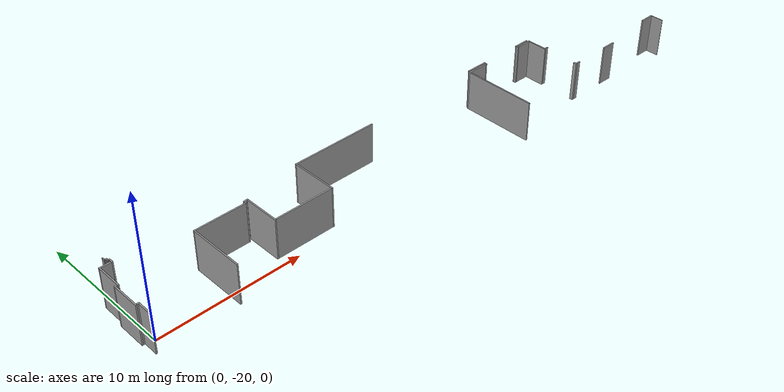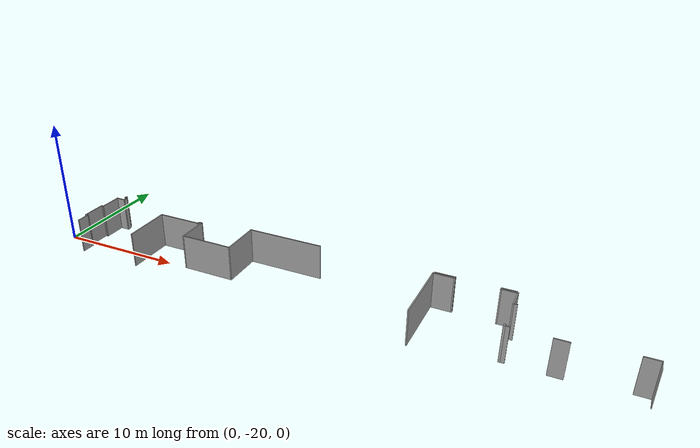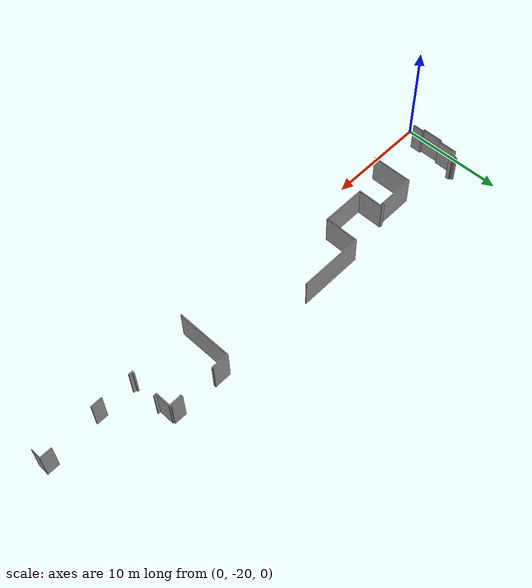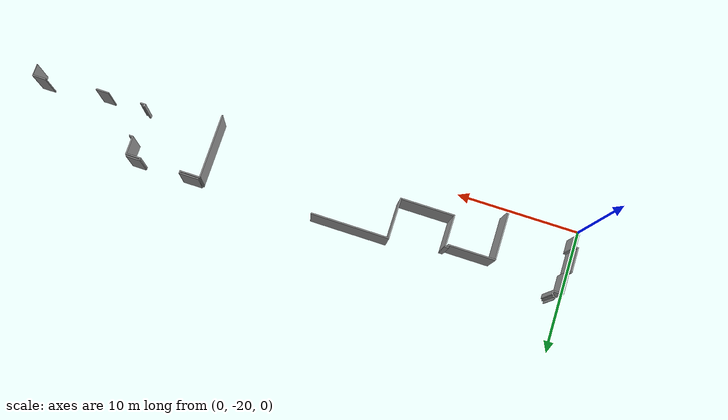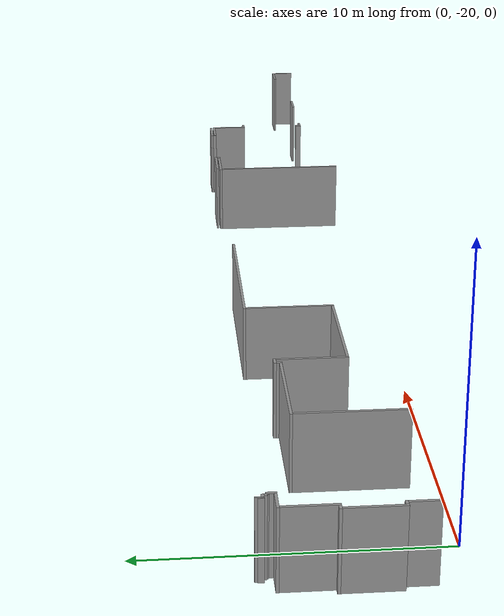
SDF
<sdf version="1.4">
 <model name="RussianRestaurant">
  <static>1</static>
  <link name="Wall_138">
   <collision name="Wall_138_Collision">
    <geometry><box><size>0.05000 0.30000 3.00000</size></box></geometry>
    <pose>0.82500 -14.05000 0 0 0 0.00000</pose>
   </collision>
   <visual name="Wall_138_Visual">
    <geometry><box><size>0.05000 0.30000 3.00000</size></box></geometry>
    <material>
     <script><uri>file://media/materials/scripts/gazebo.material</uri><name>Gazebo/Grey</name></script>
    </material>
    <pose>0.82500 -14.05000 0 0 0 0.00000</pose>
   </visual>
  </link>
  <link name="Wall_139">
   <collision name="Wall_139_Collision">
    <geometry><box><size>0.05000 0.20000 3.00000</size></box></geometry>
    <pose>0.77500 -14.10000 0 0 0 0.00000</pose>
   </collision>
   <visual name="Wall_139_Visual">
    <geometry><box><size>0.05000 0.20000 3.00000</size></box></geometry>
    <material>
     <script><uri>file://media/materials/scripts/gazebo.material</uri><name>Gazebo/Grey</name></script>
    </material>
    <pose>0.77500 -14.10000 0 0 0 0.00000</pose>
   </visual>
  </link>
  <link name="Wall_140">
   <collision name="Wall_140_Collision">
    <geometry><box><size>0.15000 0.10000 3.00000</size></box></geometry>
    <pose>0.92500 -14.15000 0 0 0 0.00000</pose>
   </collision>
   <visual name="Wall_140_Visual">
    <geometry><box><size>0.15000 0.10000 3.00000</size></box></geometry>
    <material>
     <script><uri>file://media/materials/scripts/gazebo.material</uri><name>Gazebo/Grey</name></script>
    </material>
    <pose>0.92500 -14.15000 0 0 0 0.00000</pose>
   </visual>
  </link>
  <link name="Wall_141">
   <collision name="Wall_141_Collision">
    <geometry><box><size>0.10000 0.10000 3.00000</size></box></geometry>
    <pose>0.95000 -14.25000 0 0 0 0.00000</pose>
   </collision>
   <visual name="Wall_141_Visual">
    <geometry><box><size>0.10000 0.10000 3.00000</size></box></geometry>
    <material>
     <script><uri>file://media/materials/scripts/gazebo.material</uri><name>Gazebo/Grey</name></script>
    </material>
    <pose>0.95000 -14.25000 0 0 0 0.00000</pose>
   </visual>
  </link>
  <link name="Wall_142">
   <collision name="Wall_142_Collision">
    <geometry><box><size>0.10000 0.35000 3.00000</size></box></geometry>
    <pose>1.05000 -14.42500 0 0 0 0.00000</pose>
   </collision>
   <visual name="Wall_142_Visual">
    <geometry><box><size>0.10000 0.35000 3.00000</size></box></geometry>
    <material>
     <script><uri>file://media/materials/scripts/gazebo.material</uri><name>Gazebo/Grey</name></script>
    </material>
    <pose>1.05000 -14.42500 0 0 0 0.00000</pose>
   </visual>
  </link>
  <link name="Wall_143">
   <collision name="Wall_143_Collision">
    <geometry><box><size>0.05000 0.05000 3.00000</size></box></geometry>
    <pose>0.97500 -14.32500 0 0 0 0.00000</pose>
   </collision>
   <visual name="Wall_143_Visual">
    <geometry><box><size>0.05000 0.05000 3.00000</size></box></geometry>
    <material>
     <script><uri>file://media/materials/scripts/gazebo.material</uri><name>Gazebo/Grey</name></script>
    </material>
    <pose>0.97500 -14.32500 0 0 0 0.00000</pose>
   </visual>
  </link>
  <link name="Wall_144">
   <collision name="Wall_144_Collision">
    <geometry><box><size>1.65000 0.10000 3.00000</size></box></geometry>
    <pose>30.92500 -14.40000 0 0 0 0.00000</pose>
   </collision>
   <visual name="Wall_144_Visual">
    <geometry><box><size>1.65000 0.10000 3.00000</size></box></geometry>
    <material>
     <script><uri>file://media/materials/scripts/gazebo.material</uri><name>Gazebo/Grey</name></script>
    </material>
    <pose>30.92500 -14.40000 0 0 0 0.00000</pose>
   </visual>
  </link>
  <link name="Wall_145">
   <collision name="Wall_145_Collision">
    <geometry><box><size>1.20000 0.10000 3.00000</size></box></geometry>
    <pose>35.65000 -14.40000 0 0 0 0.00000</pose>
   </collision>
   <visual name="Wall_145_Visual">
    <geometry><box><size>1.20000 0.10000 3.00000</size></box></geometry>
    <material>
     <script><uri>file://media/materials/scripts/gazebo.material</uri><name>Gazebo/Grey</name></script>
    </material>
    <pose>35.65000 -14.40000 0 0 0 0.00000</pose>
   </visual>
  </link>
  <link name="Wall_146">
   <collision name="Wall_146_Collision">
    <geometry><box><size>0.10000 0.15000 3.00000</size></box></geometry>
    <pose>31.70000 -14.52500 0 0 0 0.00000</pose>
   </collision>
   <visual name="Wall_146_Visual">
    <geometry><box><size>0.10000 0.15000 3.00000</size></box></geometry>
    <material>
     <script><uri>file://media/materials/scripts/gazebo.material</uri><name>Gazebo/Grey</name></script>
    </material>
    <pose>31.70000 -14.52500 0 0 0 0.00000</pose>
   </visual>
  </link>
  <link name="Wall_147">
   <collision name="Wall_147_Collision">
    <geometry><box><size>0.10000 0.15000 3.00000</size></box></geometry>
    <pose>35.10000 -14.52500 0 0 0 0.00000</pose>
   </collision>
   <visual name="Wall_147_Visual">
    <geometry><box><size>0.10000 0.15000 3.00000</size></box></geometry>
    <material>
     <script><uri>file://media/materials/scripts/gazebo.material</uri><name>Gazebo/Grey</name></script>
    </material>
    <pose>35.10000 -14.52500 0 0 0 0.00000</pose>
   </visual>
  </link>
  <link name="Wall_148">
   <collision name="Wall_148_Collision">
    <geometry><box><size>0.80000 0.10000 3.00000</size></box></geometry>
    <pose>0.60000 -14.55000 0 0 0 0.00000</pose>
   </collision>
   <visual name="Wall_148_Visual">
    <geometry><box><size>0.80000 0.10000 3.00000</size></box></geometry>
    <material>
     <script><uri>file://media/materials/scripts/gazebo.material</uri><name>Gazebo/Grey</name></script>
    </material>
    <pose>0.60000 -14.55000 0 0 0 0.00000</pose>
   </visual>
  </link>
  <link name="Wall_149">
   <collision name="Wall_149_Collision">
    <geometry><box><size>6.45000 0.10000 3.00000</size></box></geometry>
    <pose>17.52500 -14.55000 0 0 0 0.00000</pose>
   </collision>
   <visual name="Wall_149_Visual">
    <geometry><box><size>6.45000 0.10000 3.00000</size></box></geometry>
    <material>
     <script><uri>file://media/materials/scripts/gazebo.material</uri><name>Gazebo/Grey</name></script>
    </material>
    <pose>17.52500 -14.55000 0 0 0 0.00000</pose>
   </visual>
  </link>
  <link name="Wall_150">
   <collision name="Wall_150_Collision">
    <geometry><box><size>1.65000 0.10000 3.00000</size></box></geometry>
    <pose>30.82500 -14.55000 0 0 0 0.00000</pose>
   </collision>
   <visual name="Wall_150_Visual">
    <geometry><box><size>1.65000 0.10000 3.00000</size></box></geometry>
    <material>
     <script><uri>file://media/materials/scripts/gazebo.material</uri><name>Gazebo/Grey</name></script>
    </material>
    <pose>30.82500 -14.55000 0 0 0 0.00000</pose>
   </visual>
  </link>
  <link name="Wall_151">
   <collision name="Wall_151_Collision">
    <geometry><box><size>1.20000 0.10000 3.00000</size></box></geometry>
    <pose>35.75000 -14.55000 0 0 0 0.00000</pose>
   </collision>
   <visual name="Wall_151_Visual">
    <geometry><box><size>1.20000 0.10000 3.00000</size></box></geometry>
    <material>
     <script><uri>file://media/materials/scripts/gazebo.material</uri><name>Gazebo/Grey</name></script>
    </material>
    <pose>35.75000 -14.55000 0 0 0 0.00000</pose>
   </visual>
  </link>
  <link name="Wall_152">
   <collision name="Wall_152_Collision">
    <geometry><box><size>0.10000 1.85000 3.00000</size></box></geometry>
    <pose>0.25000 -15.52500 0 0 0 0.00000</pose>
   </collision>
   <visual name="Wall_152_Visual">
    <geometry><box><size>0.10000 1.85000 3.00000</size></box></geometry>
    <material>
     <script><uri>file://media/materials/scripts/gazebo.material</uri><name>Gazebo/Grey</name></script>
    </material>
    <pose>0.25000 -15.52500 0 0 0 0.00000</pose>
   </visual>
  </link>
  <link name="Wall_153">
   <collision name="Wall_153_Collision">
    <geometry><box><size>0.10000 3.35000 3.00000</size></box></geometry>
    <pose>14.35000 -16.27500 0 0 0 0.00000</pose>
   </collision>
   <visual name="Wall_153_Visual">
    <geometry><box><size>0.10000 3.35000 3.00000</size></box></geometry>
    <material>
     <script><uri>file://media/materials/scripts/gazebo.material</uri><name>Gazebo/Grey</name></script>
    </material>
    <pose>14.35000 -16.27500 0 0 0 0.00000</pose>
   </visual>
  </link>
  <link name="Wall_154">
   <collision name="Wall_154_Collision">
    <geometry><box><size>0.10000 5.40000 3.00000</size></box></geometry>
    <pose>30.05000 -17.30000 0 0 0 0.00000</pose>
   </collision>
   <visual name="Wall_154_Visual">
    <geometry><box><size>0.10000 5.40000 3.00000</size></box></geometry>
    <material>
     <script><uri>file://media/materials/scripts/gazebo.material</uri><name>Gazebo/Grey</name></script>
    </material>
    <pose>30.05000 -17.30000 0 0 0 0.00000</pose>
   </visual>
  </link>
  <link name="Wall_155">
   <collision name="Wall_155_Collision">
    <geometry><box><size>0.10000 1.50000 3.00000</size></box></geometry>
    <pose>36.30000 -15.35000 0 0 0 0.00000</pose>
   </collision>
   <visual name="Wall_155_Visual">
    <geometry><box><size>0.10000 1.50000 3.00000</size></box></geometry>
    <material>
     <script><uri>file://media/materials/scripts/gazebo.material</uri><name>Gazebo/Grey</name></script>
    </material>
    <pose>36.30000 -15.35000 0 0 0 0.00000</pose>
   </visual>
  </link>
  <link name="Wall_156">
   <collision name="Wall_156_Collision">
    <geometry><box><size>0.35000 0.10000 3.00000</size></box></geometry>
    <pose>9.82500 -15.30000 0 0 0 0.00000</pose>
   </collision>
   <visual name="Wall_156_Visual">
    <geometry><box><size>0.35000 0.10000 3.00000</size></box></geometry>
    <material>
     <script><uri>file://media/materials/scripts/gazebo.material</uri><name>Gazebo/Grey</name></script>
    </material>
    <pose>9.82500 -15.30000 0 0 0 0.00000</pose>
   </visual>
  </link>
  <link name="Wall_157">
   <collision name="Wall_157_Collision">
    <geometry><box><size>0.10000 0.20000 3.00000</size></box></geometry>
    <pose>9.70000 -15.45000 0 0 0 0.00000</pose>
   </collision>
   <visual name="Wall_157_Visual">
    <geometry><box><size>0.10000 0.20000 3.00000</size></box></geometry>
    <material>
     <script><uri>file://media/materials/scripts/gazebo.material</uri><name>Gazebo/Grey</name></script>
    </material>
    <pose>9.70000 -15.45000 0 0 0 0.00000</pose>
   </visual>
  </link>
  <link name="Wall_158">
   <collision name="Wall_158_Collision">
    <geometry><box><size>0.10000 2.60000 3.00000</size></box></geometry>
    <pose>9.95000 -16.65000 0 0 0 0.00000</pose>
   </collision>
   <visual name="Wall_158_Visual">
    <geometry><box><size>0.10000 2.60000 3.00000</size></box></geometry>
    <material>
     <script><uri>file://media/materials/scripts/gazebo.material</uri><name>Gazebo/Grey</name></script>
    </material>
    <pose>9.95000 -16.65000 0 0 0 0.00000</pose>
   </visual>
  </link>
  <link name="Wall_159">
   <collision name="Wall_159_Collision">
    <geometry><box><size>3.75000 0.10000 3.00000</size></box></geometry>
    <pose>7.77500 -15.50000 0 0 0 0.00000</pose>
   </collision>
   <visual name="Wall_159_Visual">
    <geometry><box><size>3.75000 0.10000 3.00000</size></box></geometry>
    <material>
     <script><uri>file://media/materials/scripts/gazebo.material</uri><name>Gazebo/Grey</name></script>
    </material>
    <pose>7.77500 -15.50000 0 0 0 0.00000</pose>
   </visual>
  </link>
  <link name="Wall_160">
   <collision name="Wall_160_Collision">
    <geometry><box><size>0.10000 4.00000 3.00000</size></box></geometry>
    <pose>5.95000 -17.55000 0 0 0 0.00000</pose>
   </collision>
   <visual name="Wall_160_Visual">
    <geometry><box><size>0.10000 4.00000 3.00000</size></box></geometry>
    <material>
     <script><uri>file://media/materials/scripts/gazebo.material</uri><name>Gazebo/Grey</name></script>
    </material>
    <pose>5.95000 -17.55000 0 0 0 0.00000</pose>
   </visual>
  </link>
  <link name="Wall_161">
   <collision name="Wall_161_Collision">
    <geometry><box><size>0.25000 0.10000 3.00000</size></box></geometry>
    <pose>36.47500 -16.05000 0 0 0 0.00000</pose>
   </collision>
   <visual name="Wall_161_Visual">
    <geometry><box><size>0.25000 0.10000 3.00000</size></box></geometry>
    <material>
     <script><uri>file://media/materials/scripts/gazebo.material</uri><name>Gazebo/Grey</name></script>
    </material>
    <pose>36.47500 -16.05000 0 0 0 0.00000</pose>
   </visual>
  </link>
  <link name="Wall_162">
   <collision name="Wall_162_Collision">
    <geometry><box><size>0.20000 0.10000 3.00000</size></box></geometry>
    <pose>0.10000 -16.40000 0 0 0 0.00000</pose>
   </collision>
   <visual name="Wall_162_Visual">
    <geometry><box><size>0.20000 0.10000 3.00000</size></box></geometry>
    <material>
     <script><uri>file://media/materials/scripts/gazebo.material</uri><name>Gazebo/Grey</name></script>
    </material>
    <pose>0.10000 -16.40000 0 0 0 0.00000</pose>
   </visual>
  </link>
  <link name="Wall_163">
   <collision name="Wall_163_Collision">
    <geometry><box><size>0.10000 2.00000 3.00000</size></box></geometry>
    <pose>0.05000 -17.45000 0 0 0 0.00000</pose>
   </collision>
   <visual name="Wall_163_Visual">
    <geometry><box><size>0.10000 2.00000 3.00000</size></box></geometry>
    <material>
     <script><uri>file://media/materials/scripts/gazebo.material</uri><name>Gazebo/Grey</name></script>
    </material>
    <pose>0.05000 -17.45000 0 0 0 0.00000</pose>
   </visual>
  </link>
  <link name="Wall_164">
   <collision name="Wall_164_Collision">
    <geometry><box><size>4.30000 0.10000 3.00000</size></box></geometry>
    <pose>12.15000 -17.90000 0 0 0 0.00000</pose>
   </collision>
   <visual name="Wall_164_Visual">
    <geometry><box><size>4.30000 0.10000 3.00000</size></box></geometry>
    <material>
     <script><uri>file://media/materials/scripts/gazebo.material</uri><name>Gazebo/Grey</name></script>
    </material>
    <pose>12.15000 -17.90000 0 0 0 0.00000</pose>
   </visual>
  </link>
  <link name="Wall_165">
   <collision name="Wall_165_Collision">
    <geometry><box><size>0.20000 0.10000 3.00000</size></box></geometry>
    <pose>0.20000 -18.40000 0 0 0 0.00000</pose>
   </collision>
   <visual name="Wall_165_Visual">
    <geometry><box><size>0.20000 0.10000 3.00000</size></box></geometry>
    <material>
     <script><uri>file://media/materials/scripts/gazebo.material</uri><name>Gazebo/Grey</name></script>
    </material>
    <pose>0.20000 -18.40000 0 0 0 0.00000</pose>
   </visual>
  </link>
  <link name="Wall_166">
   <collision name="Wall_166_Collision">
    <geometry><box><size>1.15000 0.10000 3.00000</size></box></geometry>
    <pose>45.32500 -18.40000 0 0 0 0.00000</pose>
   </collision>
   <visual name="Wall_166_Visual">
    <geometry><box><size>1.15000 0.10000 3.00000</size></box></geometry>
    <material>
     <script><uri>file://media/materials/scripts/gazebo.material</uri><name>Gazebo/Grey</name></script>
    </material>
    <pose>45.32500 -18.40000 0 0 0 0.00000</pose>
   </visual>
  </link>
  <link name="Wall_167">
   <collision name="Wall_167_Collision">
    <geometry><box><size>0.10000 1.05000 3.00000</size></box></geometry>
    <pose>0.25000 -18.97500 0 0 0 0.00000</pose>
   </collision>
   <visual name="Wall_167_Visual">
    <geometry><box><size>0.10000 1.05000 3.00000</size></box></geometry>
    <material>
     <script><uri>file://media/materials/scripts/gazebo.material</uri><name>Gazebo/Grey</name></script>
    </material>
    <pose>0.25000 -18.97500 0 0 0 0.00000</pose>
   </visual>
  </link>
  <link name="Wall_168">
   <collision name="Wall_168_Collision">
    <geometry><box><size>0.05000 0.95000 3.00000</size></box></geometry>
    <pose>45.87500 -18.92500 0 0 0 0.00000</pose>
   </collision>
   <visual name="Wall_168_Visual">
    <geometry><box><size>0.05000 0.95000 3.00000</size></box></geometry>
    <material>
     <script><uri>file://media/materials/scripts/gazebo.material</uri><name>Gazebo/Grey</name></script>
    </material>
    <pose>45.87500 -18.92500 0 0 0 0.00000</pose>
   </visual>
  </link>
  <link name="Wall_169">
   <collision name="Wall_169_Collision">
    <geometry><box><size>0.15000 0.25000 3.00000</size></box></geometry>
    <pose>36.32500 -18.82500 0 0 0 0.00000</pose>
   </collision>
   <visual name="Wall_169_Visual">
    <geometry><box><size>0.15000 0.25000 3.00000</size></box></geometry>
    <material>
     <script><uri>file://media/materials/scripts/gazebo.material</uri><name>Gazebo/Grey</name></script>
    </material>
    <pose>36.32500 -18.82500 0 0 0 0.00000</pose>
   </visual>
  </link>
  <link name="Wall_170">
   <collision name="Wall_170_Collision">
    <geometry><box><size>0.30000 0.10000 3.00000</size></box></geometry>
    <pose>36.55000 -18.90000 0 0 0 0.00000</pose>
   </collision>
   <visual name="Wall_170_Visual">
    <geometry><box><size>0.30000 0.10000 3.00000</size></box></geometry>
    <material>
     <script><uri>file://media/materials/scripts/gazebo.material</uri><name>Gazebo/Grey</name></script>
    </material>
    <pose>36.55000 -18.90000 0 0 0 0.00000</pose>
   </visual>
  </link>
  <link name="Wall_171">
   <collision name="Wall_171_Collision">
    <geometry><box><size>1.10000 0.10000 3.00000</size></box></geometry>
    <pose>40.00000 -18.90000 0 0 0 0.00000</pose>
   </collision>
   <visual name="Wall_171_Visual">
    <geometry><box><size>1.10000 0.10000 3.00000</size></box></geometry>
    <material>
     <script><uri>file://media/materials/scripts/gazebo.material</uri><name>Gazebo/Grey</name></script>
    </material>
    <pose>40.00000 -18.90000 0 0 0 0.00000</pose>
   </visual>
  </link>
 </model>
</sdf>
